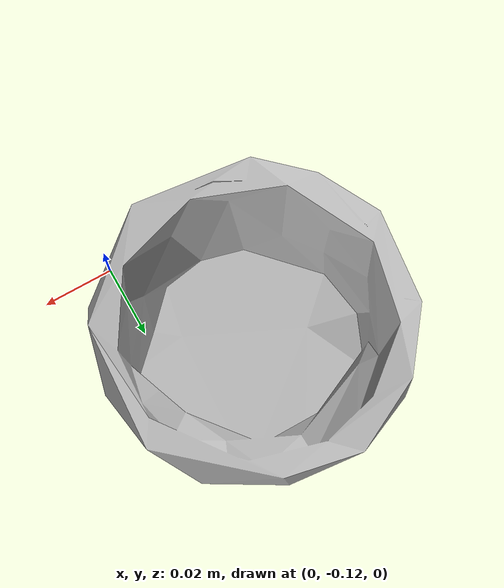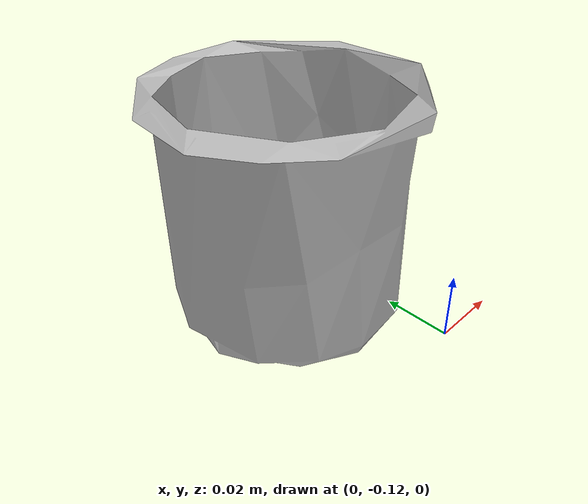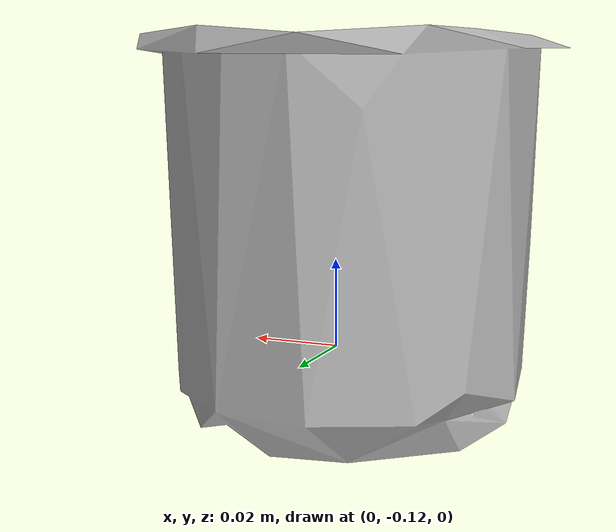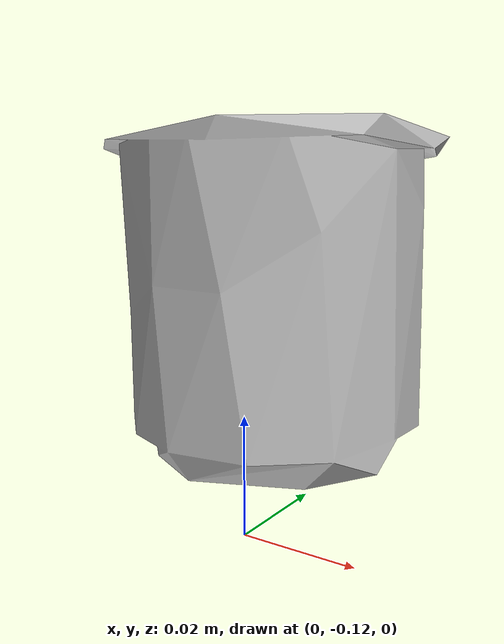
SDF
<?xml version='1.0'?>
<sdf version="1.4">
  <model name="065-e_cups">
    <static>false</static>
    <link name="link">
      <inertial>
        <pose>-0.0211587264372161 -0.0781527374097342 0.03712966029010916 -3.1409696994792817 0.00021110332995382075 -1.9085049895733772</pose>
        <mass>0.02655154520899199</mass>
        <inertia>
          <ixx>1.8758539340007584e-05</ixx>
          <ixy>-1.5946437937033972e-21</ixy>
          <ixz>7.462181650128432e-22</ixz>
          <iyy>1.8730141451339505e-05</iyy>
          <iyz>-2.375715404164195e-22</iyz>
          <izz>1.6134035100090242e-05</izz>
        </inertia>
      </inertial>
      <collision name="collision">
        <geometry>
          <mesh>
            <!-- Use a downsampled mesh for collisions -->
            <uri>model:///065-e_cups/065-e_cups_250_collision.stl</uri>
	        </mesh>
        </geometry>
        <surface>
      </surface>
      </collision>
      <visual name="visual">
        <geometry>
          <mesh>
            <uri>model:///065-e_cups/textured.obj</uri>
	        </mesh>
        </geometry>
        <material>
          <script>
            <uri>model:///065-e_cups/065-e_cups.material</uri>
            <name>065-e_cups</name>
          </script>
        </material>
      </visual>
    </link>
  </model>
</sdf>
